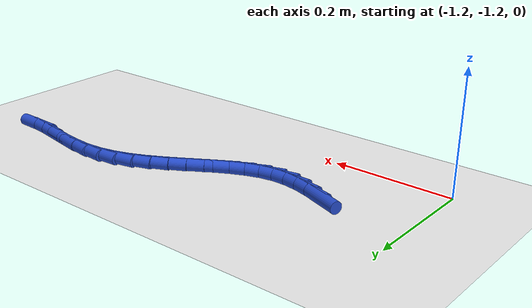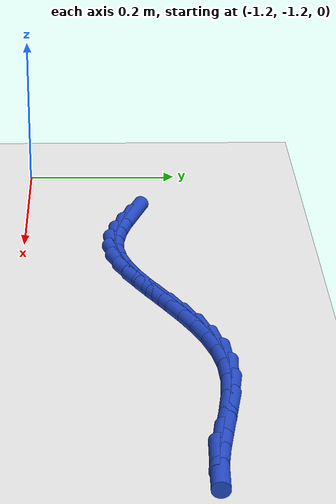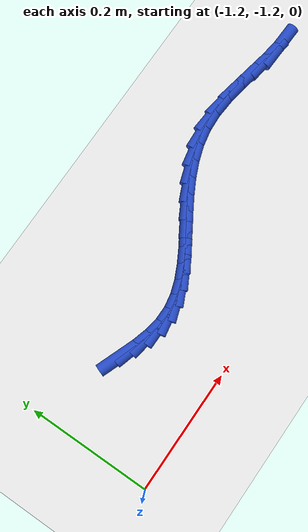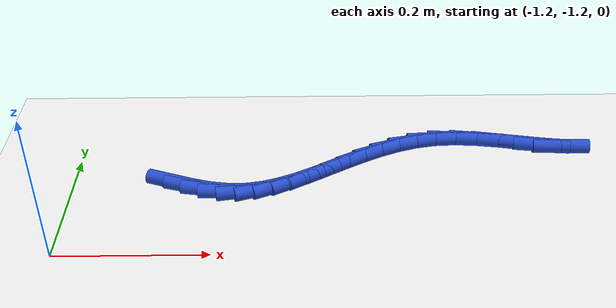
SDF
<sdf version="1.6">
 <world name="default">
  <model name="ground_plane">
   <static>1</static>
   <link name="link">
    <collision name="collision">
     <geometry><plane><normal>0 0 1</normal><size>100 100</size></plane></geometry>
     <surface><friction><ode><mu>100</mu><mu2>50</mu2></ode></friction></surface>
    </collision>
    <visual name="visual">
     <cast_shadows>0</cast_shadows>
     <geometry><plane><normal>0 0 1</normal><size>100 100</size></plane></geometry>
     <material>
      <script><uri>file://media/materials/scripts/gazebo.material</uri><name>Gazebo/WhiteGlow</name></script>
     </material>
    </visual>
   </link>
  </model>
  <model name="line">
   <link name="link_193">
    <pose>-1.0602665519524435 -1.0613120328828922 0.01 0 1.57 -0.36207961648427794</pose>
    <collision name="collision">
     <geometry><cylinder><radius>0.01</radius><length>0.08</length></cylinder></geometry>
    </collision>
    <visual name="visual">
     <material>
      <script><name>Gazebo/Blue</name><uri>file://media/materials/scripts/gazebo.material</uri></script>
     </material>
     <geometry><cylinder><radius>0.01</radius><length>0.08</length></cylinder></geometry>
    </visual>
   </link>
   <link name="link_194">
    <pose>-1.0354778460140839 -1.0707014733789157 0.01 0 1.57 -0.28357276513504204</pose>
    <collision name="collision">
     <geometry><cylinder><radius>0.01</radius><length>0.08</length></cylinder></geometry>
    </collision>
    <visual name="visual">
     <material>
      <script><name>Gazebo/Blue</name><uri>file://media/materials/scripts/gazebo.material</uri></script>
     </material>
     <geometry><cylinder><radius>0.01</radius><length>0.08</length></cylinder></geometry>
    </visual>
   </link>
   <link name="link_195">
    <pose>-1.0110838538704527 -1.0778105293371352 0.01 0 1.57 -0.16591073092921907</pose>
    <collision name="collision">
     <geometry><cylinder><radius>0.01</radius><length>0.08</length></cylinder></geometry>
    </collision>
    <visual name="visual">
     <material>
      <script><name>Gazebo/Blue</name><uri>file://media/materials/scripts/gazebo.material</uri></script>
     </material>
     <geometry><cylinder><radius>0.01</radius><length>0.08</length></cylinder></geometry>
    </visual>
   </link>
   <link name="link_196">
    <pose>-0.9871402142832051 -1.0818198914980943 0.01 0 1.57 -0.003990675560473847</pose>
    <collision name="collision">
     <geometry><cylinder><radius>0.01</radius><length>0.08</length></cylinder></geometry>
    </collision>
    <visual name="visual">
     <material>
      <script><name>Gazebo/Blue</name><uri>file://media/materials/scripts/gazebo.material</uri></script>
     </material>
     <geometry><cylinder><radius>0.01</radius><length>0.08</length></cylinder></geometry>
    </visual>
   </link>
   <link name="link_197">
    <pose>-0.9637020839272143 -1.0819134259686172 0.01 0 1.57 0.17932900421894388</pose>
    <collision name="collision">
     <geometry><cylinder><radius>0.01</radius><length>0.08</length></cylinder></geometry>
    </collision>
    <visual name="visual">
     <material>
      <script><name>Gazebo/Blue</name><uri>file://media/materials/scripts/gazebo.material</uri></script>
     </material>
     <geometry><cylinder><radius>0.01</radius><length>0.08</length></cylinder></geometry>
    </visual>
   </link>
   <link name="link_198">
    <pose>-0.9407520302849465 -1.0777531228837205 0.01 0 1.57 0.3306833140629657</pose>
    <collision name="collision">
     <geometry><cylinder><radius>0.01</radius><length>0.08</length></cylinder></geometry>
    </collision>
    <visual name="visual">
     <material>
      <script><name>Gazebo/Blue</name><uri>file://media/materials/scripts/gazebo.material</uri></script>
     </material>
     <geometry><cylinder><radius>0.01</radius><length>0.08</length></cylinder></geometry>
    </visual>
   </link>
   <link name="link_199">
    <pose>-0.9181232374074113 -1.069984917861508 0.01 0 1.57 0.4407220215278752</pose>
    <collision name="collision">
     <geometry><cylinder><radius>0.01</radius><length>0.08</length></cylinder></geometry>
    </collision>
    <visual name="visual">
     <material>
      <script><name>Gazebo/Blue</name><uri>file://media/materials/scripts/gazebo.material</uri></script>
     </material>
     <geometry><cylinder><radius>0.01</radius><length>0.08</length></cylinder></geometry>
    </visual>
   </link>
   <link name="link_200">
    <pose>-0.8956304919420243 -1.059375924899704 0.01 0 1.57 0.5124852193873561</pose>
    <collision name="collision">
     <geometry><cylinder><radius>0.01</radius><length>0.08</length></cylinder></geometry>
    </collision>
    <visual name="visual">
     <material>
      <script><name>Gazebo/Blue</name><uri>file://media/materials/scripts/gazebo.material</uri></script>
     </material>
     <geometry><cylinder><radius>0.01</radius><length>0.08</length></cylinder></geometry>
    </visual>
   </link>
   <link name="link_201">
    <pose>-0.8730885805362026 -1.0466932579960337 0.01 0 1.57 0.5507962284126192</pose>
    <collision name="collision">
     <geometry><cylinder><radius>0.01</radius><length>0.08</length></cylinder></geometry>
    </collision>
    <visual name="visual">
     <material>
      <script><name>Gazebo/Blue</name><uri>file://media/materials/scripts/gazebo.material</uri></script>
     </material>
     <geometry><cylinder><radius>0.01</radius><length>0.08</length></cylinder></geometry>
    </visual>
   </link>
   <link name="link_202">
    <pose>-0.8503122898373624 -1.0327040311482232 0.01 0 1.57 0.559567384498664</pose>
    <collision name="collision">
     <geometry><cylinder><radius>0.01</radius><length>0.08</length></cylinder></geometry>
    </collision>
    <visual name="visual">
     <material>
      <script><name>Gazebo/Blue</name><uri>file://media/materials/scripts/gazebo.material</uri></script>
     </material>
     <geometry><cylinder><radius>0.01</radius><length>0.08</length></cylinder></geometry>
    </visual>
   </link>
   <link name="link_203">
    <pose>-0.8271164064929207 -1.0181753583539974 0.01 0 1.57 0.5410553962825333</pose>
    <collision name="collision">
     <geometry><cylinder><radius>0.01</radius><length>0.08</length></cylinder></geometry>
    </collision>
    <visual name="visual">
     <material>
      <script><name>Gazebo/Blue</name><uri>file://media/materials/scripts/gazebo.material</uri></script>
     </material>
     <geometry><cylinder><radius>0.01</radius><length>0.08</length></cylinder></geometry>
    </visual>
   </link>
   <link name="link_204">
    <pose>-0.803315717150293 -1.003874353611081 0.01 0 1.57 0.49599051213621836</pose>
    <collision name="collision">
     <geometry><cylinder><radius>0.01</radius><length>0.08</length></cylinder></geometry>
    </collision>
    <visual name="visual">
     <material>
      <script><name>Gazebo/Blue</name><uri>file://media/materials/scripts/gazebo.material</uri></script>
     </material>
     <geometry><cylinder><radius>0.01</radius><length>0.08</length></cylinder></geometry>
    </visual>
   </link>
   <link name="link_205">
    <pose>-0.7787250084568975 -0.9905681309172006 0.01 0 1.57 0.4241429980257811</pose>
    <collision name="collision">
     <geometry><cylinder><radius>0.01</radius><length>0.08</length></cylinder></geometry>
    </collision>
    <visual name="visual">
     <material>
      <script><name>Gazebo/Blue</name><uri>file://media/materials/scripts/gazebo.material</uri></script>
     </material>
     <geometry><cylinder><radius>0.01</radius><length>0.08</length></cylinder></geometry>
    </visual>
   </link>
   <link name="link_206">
    <pose>-0.7531590670601497 -0.9790238042700805 0.01 0 1.57 0.3253332984367981</pose>
    <collision name="collision">
     <geometry><cylinder><radius>0.01</radius><length>0.08</length></cylinder></geometry>
    </collision>
    <visual name="visual">
     <material>
      <script><name>Gazebo/Blue</name><uri>file://media/materials/scripts/gazebo.material</uri></script>
     </material>
     <geometry><cylinder><radius>0.01</radius><length>0.08</length></cylinder></geometry>
    </visual>
   </link>
   <link name="link_207">
    <pose>-0.726432679607466 -0.9700084876674463 0.01 0 1.57 0.2009820586866937</pose>
    <collision name="collision">
     <geometry><cylinder><radius>0.01</radius><length>0.08</length></cylinder></geometry>
    </collision>
    <visual name="visual">
     <material>
      <script><name>Gazebo/Blue</name><uri>file://media/materials/scripts/gazebo.material</uri></script>
     </material>
     <geometry><cylinder><radius>0.01</radius><length>0.08</length></cylinder></geometry>
    </visual>
   </link>
   <link name="link_208">
    <pose>-0.6983606327462637 -0.9642892951070232 0.01 0 1.57 0.05684929438570882</pose>
    <collision name="collision">
     <geometry><cylinder><radius>0.01</radius><length>0.08</length></cylinder></geometry>
    </collision>
    <visual name="visual">
     <material>
      <script><name>Gazebo/Blue</name><uri>file://media/materials/scripts/gazebo.material</uri></script>
     </material>
     <geometry><cylinder><radius>0.01</radius><length>0.08</length></cylinder></geometry>
    </visual>
   </link>
   <link name="link_209">
    <pose>-0.6687717512502778 -0.9626053736251348 0.01 0 1.57 -0.06989213062083119</pose>
    <collision name="collision">
     <geometry><cylinder><radius>0.01</radius><length>0.08</length></cylinder></geometry>
    </collision>
    <visual name="visual">
     <material>
      <script><name>Gazebo/Blue</name><uri>file://media/materials/scripts/gazebo.material</uri></script>
     </material>
     <geometry><cylinder><radius>0.01</radius><length>0.08</length></cylinder></geometry>
    </visual>
   </link>
   <link name="link_210">
    <pose>-0.6379635507718924 -0.9647621374069713 0.01 0 1.57 -0.14881347729952873</pose>
    <collision name="collision">
     <geometry><cylinder><radius>0.01</radius><length>0.08</length></cylinder></geometry>
    </collision>
    <visual name="visual">
     <material>
      <script><name>Gazebo/Blue</name><uri>file://media/materials/scripts/gazebo.material</uri></script>
     </material>
     <geometry><cylinder><radius>0.01</radius><length>0.08</length></cylinder></geometry>
    </visual>
   </link>
   <link name="link_211">
    <pose>-0.6068012328306917 -0.9694340485166607 0.01 0 1.57 -0.1870176701840926</pose>
    <collision name="collision">
     <geometry><cylinder><radius>0.01</radius><length>0.08</length></cylinder></geometry>
    </collision>
    <visual name="visual">
     <material>
      <script><name>Gazebo/Blue</name><uri>file://media/materials/scripts/gazebo.material</uri></script>
     </material>
     <geometry><cylinder><radius>0.01</radius><length>0.08</length></cylinder></geometry>
    </visual>
   </link>
   <link name="link_212">
    <pose>-0.5761840642535828 -0.9752277036128377 0.01 0 1.57 -0.18707280430200196</pose>
    <collision name="collision">
     <geometry><cylinder><radius>0.01</radius><length>0.08</length></cylinder></geometry>
    </collision>
    <visual name="visual">
     <material>
      <script><name>Gazebo/Blue</name><uri>file://media/materials/scripts/gazebo.material</uri></script>
     </material>
     <geometry><cylinder><radius>0.01</radius><length>0.08</length></cylinder></geometry>
    </visual>
   </link>
   <link name="link_213">
    <pose>-0.5470113118674718 -0.9807496993541363 0.01 0 1.57 -0.14278123248625</pose>
    <collision name="collision">
     <geometry><cylinder><radius>0.01</radius><length>0.08</length></cylinder></geometry>
    </collision>
    <visual name="visual">
     <material>
      <script><name>Gazebo/Blue</name><uri>file://media/materials/scripts/gazebo.material</uri></script>
     </material>
     <geometry><cylinder><radius>0.01</radius><length>0.08</length></cylinder></geometry>
    </visual>
   </link>
   <link name="link_214">
    <pose>-0.5201822424992668 -0.9846066323991909 0.01 0 1.57 -0.03384033521702948</pose>
    <collision name="collision">
     <geometry><cylinder><radius>0.01</radius><length>0.08</length></cylinder></geometry>
    </collision>
    <visual name="visual">
     <material>
      <script><name>Gazebo/Blue</name><uri>file://media/materials/scripts/gazebo.material</uri></script>
     </material>
     <geometry><cylinder><radius>0.01</radius><length>0.08</length></cylinder></geometry>
    </visual>
   </link>
  </model>
 </world>
</sdf>
